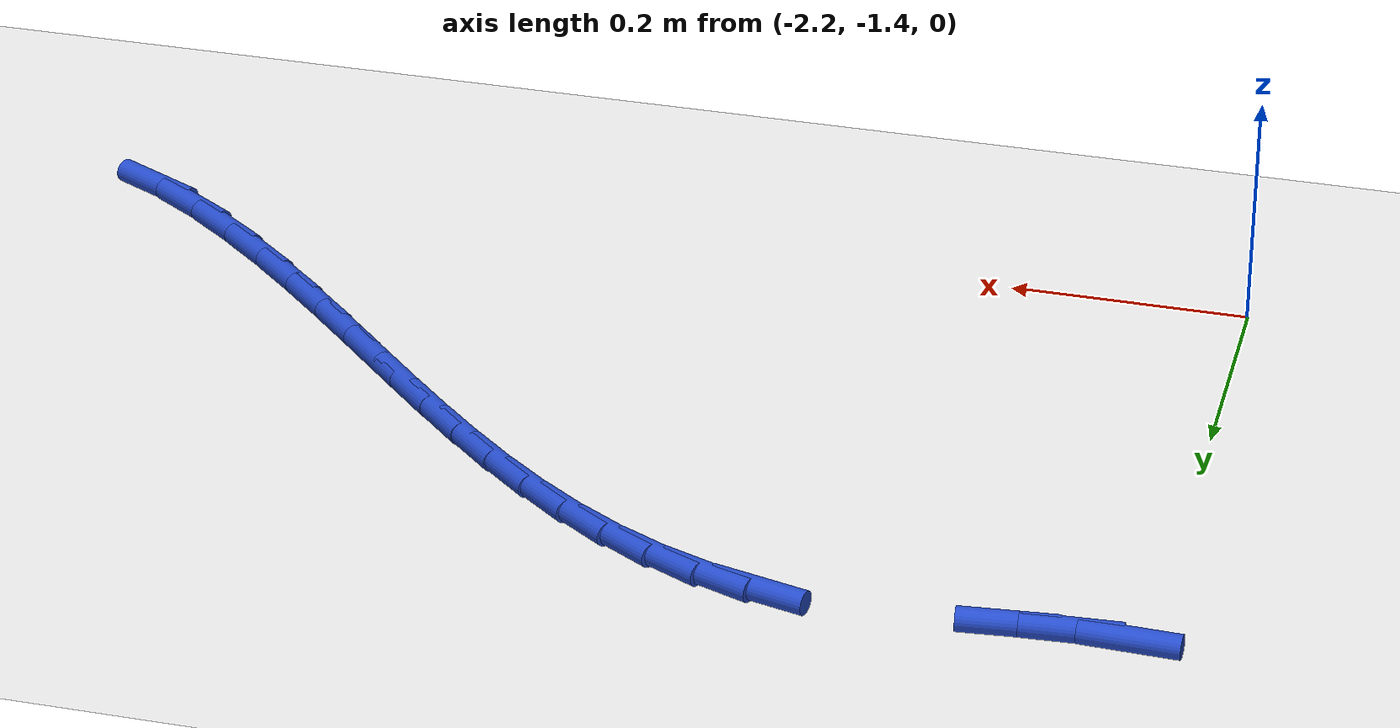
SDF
<sdf version="1.6">
 <world name="default">
  <model name="ground_plane">
   <static>1</static>
   <link name="link">
    <collision name="collision">
     <geometry><plane><normal>0 0 1</normal><size>100 100</size></plane></geometry>
     <surface><friction><ode><mu>100</mu><mu2>50</mu2></ode></friction></surface>
    </collision>
    <visual name="visual">
     <cast_shadows>0</cast_shadows>
     <geometry><plane><normal>0 0 1</normal><size>100 100</size></plane></geometry>
     <material>
      <script><uri>file://media/materials/scripts/gazebo.material</uri><name>Gazebo/WhiteGlow</name></script>
     </material>
    </visual>
   </link>
  </model>
  <model name="line">
   <link name="link_104">
    <pose>-2.1863535138939607 -0.891183382363469 0.01 0 1.57 -0.03459274210412524</pose>
    <collision name="collision">
     <geometry><cylinder><radius>0.01</radius><length>0.08</length></cylinder></geometry>
    </collision>
    <visual name="visual">
     <material>
      <script><name>Gazebo/Blue</name><uri>file://media/materials/scripts/gazebo.material</uri></script>
     </material>
     <geometry><cylinder><radius>0.01</radius><length>0.08</length></cylinder></geometry>
    </visual>
   </link>
   <link name="link_105">
    <pose>-2.141740156563224 -0.8927272966228299 0.01 0 1.57 0.06148715902980273</pose>
    <collision name="collision">
     <geometry><cylinder><radius>0.01</radius><length>0.08</length></cylinder></geometry>
    </collision>
    <visual name="visual">
     <material>
      <script><name>Gazebo/Blue</name><uri>file://media/materials/scripts/gazebo.material</uri></script>
     </material>
     <geometry><cylinder><radius>0.01</radius><length>0.08</length></cylinder></geometry>
    </visual>
   </link>
   <link name="link_106">
    <pose>-2.0939521663433305 -0.8897852402848782 0.01 0 1.57 0.09289889340919137</pose>
    <collision name="collision">
     <geometry><cylinder><radius>0.01</radius><length>0.08</length></cylinder></geometry>
    </collision>
    <visual name="visual">
     <material>
      <script><name>Gazebo/Blue</name><uri>file://media/materials/scripts/gazebo.material</uri></script>
     </material>
     <geometry><cylinder><radius>0.01</radius><length>0.08</length></cylinder></geometry>
    </visual>
   </link>
   <link name="link_110">
    <pose>-1.9015010749153678 -0.8880810859353943 0.01 0 1.57 -0.24246549224577857</pose>
    <collision name="collision">
     <geometry><cylinder><radius>0.01</radius><length>0.08</length></cylinder></geometry>
    </collision>
    <visual name="visual">
     <material>
      <script><name>Gazebo/Blue</name><uri>file://media/materials/scripts/gazebo.material</uri></script>
     </material>
     <geometry><cylinder><radius>0.01</radius><length>0.08</length></cylinder></geometry>
    </visual>
   </link>
   <link name="link_111">
    <pose>-1.8578995412120223 -0.8988651154841312 0.01 0 1.57 -0.3511095911500279</pose>
    <collision name="collision">
     <geometry><cylinder><radius>0.01</radius><length>0.08</length></cylinder></geometry>
    </collision>
    <visual name="visual">
     <material>
      <script><name>Gazebo/Blue</name><uri>file://media/materials/scripts/gazebo.material</uri></script>
     </material>
     <geometry><cylinder><radius>0.01</radius><length>0.08</length></cylinder></geometry>
    </visual>
   </link>
   <link name="link_112">
    <pose>-1.8161365110290368 -0.9141623473159629 0.01 0 1.57 -0.4492049320993139</pose>
    <collision name="collision">
     <geometry><cylinder><radius>0.01</radius><length>0.08</length></cylinder></geometry>
    </collision>
    <visual name="visual">
     <material>
      <script><name>Gazebo/Blue</name><uri>file://media/materials/scripts/gazebo.material</uri></script>
     </material>
     <geometry><cylinder><radius>0.01</radius><length>0.08</length></cylinder></geometry>
    </visual>
   </link>
   <link name="link_113">
    <pose>-1.775973570536788 -0.9335238908727727 0.01 0 1.57 -0.5346426331031279</pose>
    <collision name="collision">
     <geometry><cylinder><radius>0.01</radius><length>0.08</length></cylinder></geometry>
    </collision>
    <visual name="visual">
     <material>
      <script><name>Gazebo/Blue</name><uri>file://media/materials/scripts/gazebo.material</uri></script>
     </material>
     <geometry><cylinder><radius>0.01</radius><length>0.08</length></cylinder></geometry>
    </visual>
   </link>
   <link name="link_114">
    <pose>-1.7371723059056556 -0.9565008555964445 0.01 0 1.57 -0.6065974975046856</pose>
    <collision name="collision">
     <geometry><cylinder><radius>0.01</radius><length>0.08</length></cylinder></geometry>
    </collision>
    <visual name="visual">
     <material>
      <script><name>Gazebo/Blue</name><uri>file://media/materials/scripts/gazebo.material</uri></script>
     </material>
     <geometry><cylinder><radius>0.01</radius><length>0.08</length></cylinder></geometry>
    </visual>
   </link>
   <link name="link_115">
    <pose>-1.699494303306017 -0.9826443509288632 0.01 0 1.57 -0.6651659445312288</pose>
    <collision name="collision">
     <geometry><cylinder><radius>0.01</radius><length>0.08</length></cylinder></geometry>
    </collision>
    <visual name="visual">
     <material>
      <script><name>Gazebo/Blue</name><uri>file://media/materials/scripts/gazebo.material</uri></script>
     </material>
     <geometry><cylinder><radius>0.01</radius><length>0.08</length></cylinder></geometry>
    </visual>
   </link>
   <link name="link_116">
    <pose>-1.6627011489082526 -1.0115054863119108 0.01 0 1.57 -0.7109656474010907</pose>
    <collision name="collision">
     <geometry><cylinder><radius>0.01</radius><length>0.08</length></cylinder></geometry>
    </collision>
    <visual name="visual">
     <material>
      <script><name>Gazebo/Blue</name><uri>file://media/materials/scripts/gazebo.material</uri></script>
     </material>
     <geometry><cylinder><radius>0.01</radius><length>0.08</length></cylinder></geometry>
    </visual>
   </link>
   <link name="link_117">
    <pose>-1.62655442888274 -1.042635371187472 0.01 0 1.57 -0.7448174714007388</pose>
    <collision name="collision">
     <geometry><cylinder><radius>0.01</radius><length>0.08</length></cylinder></geometry>
    </collision>
    <visual name="visual">
     <material>
      <script><name>Gazebo/Blue</name><uri>file://media/materials/scripts/gazebo.material</uri></script>
     </material>
     <geometry><cylinder><radius>0.01</radius><length>0.08</length></cylinder></geometry>
    </visual>
   </link>
   <link name="link_118">
    <pose>-1.5908157293998575 -1.0755851149974314 0.01 0 1.57 -0.7675379355397813</pose>
    <collision name="collision">
     <geometry><cylinder><radius>0.01</radius><length>0.08</length></cylinder></geometry>
    </collision>
    <visual name="visual">
     <material>
      <script><name>Gazebo/Blue</name><uri>file://media/materials/scripts/gazebo.material</uri></script>
     </material>
     <geometry><cylinder><radius>0.01</radius><length>0.08</length></cylinder></geometry>
    </visual>
   </link>
   <link name="link_119">
    <pose>-1.555246636629984 -1.1099058271836713 0.01 0 1.57 -0.7798239260363339</pose>
    <collision name="collision">
     <geometry><cylinder><radius>0.01</radius><length>0.08</length></cylinder></geometry>
    </collision>
    <visual name="visual">
     <material>
      <script><name>Gazebo/Blue</name><uri>file://media/materials/scripts/gazebo.material</uri></script>
     </material>
     <geometry><cylinder><radius>0.01</radius><length>0.08</length></cylinder></geometry>
    </visual>
   </link>
   <link name="link_120">
    <pose>-1.5196087367434978 -1.1451486171880767 0.01 0 1.57 -0.7822005737234954</pose>
    <collision name="collision">
     <geometry><cylinder><radius>0.01</radius><length>0.08</length></cylinder></geometry>
    </collision>
    <visual name="visual">
     <material>
      <script><name>Gazebo/Blue</name><uri>file://media/materials/scripts/gazebo.material</uri></script>
     </material>
     <geometry><cylinder><radius>0.01</radius><length>0.08</length></cylinder></geometry>
    </visual>
   </link>
   <link name="link_121">
    <pose>-1.483663615910777 -1.1808645944525318 0.01 0 1.57 -0.775008520014166</pose>
    <collision name="collision">
     <geometry><cylinder><radius>0.01</radius><length>0.08</length></cylinder></geometry>
    </collision>
    <visual name="visual">
     <material>
      <script><name>Gazebo/Blue</name><uri>file://media/materials/scripts/gazebo.material</uri></script>
     </material>
     <geometry><cylinder><radius>0.01</radius><length>0.08</length></cylinder></geometry>
    </visual>
   </link>
   <link name="link_122">
    <pose>-1.4471728603022014 -1.2166048684189192 0.01 0 1.57 -0.7584159954112224</pose>
    <collision name="collision">
     <geometry><cylinder><radius>0.01</radius><length>0.08</length></cylinder></geometry>
    </collision>
    <visual name="visual">
     <material>
      <script><name>Gazebo/Blue</name><uri>file://media/materials/scripts/gazebo.material</uri></script>
     </material>
     <geometry><cylinder><radius>0.01</radius><length>0.08</length></cylinder></geometry>
    </visual>
   </link>
   <link name="link_123">
    <pose>-1.4098980560881489 -1.2519205485291232 0.01 0 1.57 -0.7324493582493541</pose>
    <collision name="collision">
     <geometry><cylinder><radius>0.01</radius><length>0.08</length></cylinder></geometry>
    </collision>
    <visual name="visual">
     <material>
      <script><name>Gazebo/Blue</name><uri>file://media/materials/scripts/gazebo.material</uri></script>
     </material>
     <geometry><cylinder><radius>0.01</radius><length>0.08</length></cylinder></geometry>
    </visual>
   </link>
   <link name="link_124">
    <pose>-1.3716007894389985 -1.2863627442250278 0.01 0 1.57 -0.697036656611829</pose>
    <collision name="collision">
     <geometry><cylinder><radius>0.01</radius><length>0.08</length></cylinder></geometry>
    </collision>
    <visual name="visual">
     <material>
      <script><name>Gazebo/Blue</name><uri>file://media/materials/scripts/gazebo.material</uri></script>
     </material>
     <geometry><cylinder><radius>0.01</radius><length>0.08</length></cylinder></geometry>
    </visual>
   </link>
   <link name="link_125">
    <pose>-1.332042836742503 -1.3194820582866424 0.01 0 1.57 -0.6481206373294665</pose>
    <collision name="collision">
     <geometry><cylinder><radius>0.01</radius><length>0.08</length></cylinder></geometry>
    </collision>
    <visual name="visual">
     <material>
      <script><name>Gazebo/Blue</name><uri>file://media/materials/scripts/gazebo.material</uri></script>
     </material>
     <geometry><cylinder><radius>0.01</radius><length>0.08</length></cylinder></geometry>
    </visual>
   </link>
   <link name="link_126">
    <pose>-1.2911207906053428 -1.3504699978110193 0.01 0 1.57 -0.572133708412399</pose>
    <collision name="collision">
     <geometry><cylinder><radius>0.01</radius><length>0.08</length></cylinder></geometry>
    </collision>
    <visual name="visual">
     <material>
      <script><name>Gazebo/Blue</name><uri>file://media/materials/scripts/gazebo.material</uri></script>
     </material>
     <geometry><cylinder><radius>0.01</radius><length>0.08</length></cylinder></geometry>
    </visual>
   </link>
   <link name="link_127">
    <pose>-1.249102564823792 -1.3775290209719235 0.01 0 1.57 -0.45937880357655553</pose>
    <collision name="collision">
     <geometry><cylinder><radius>0.01</radius><length>0.08</length></cylinder></geometry>
    </collision>
    <visual name="visual">
     <material>
      <script><name>Gazebo/Blue</name><uri>file://media/materials/scripts/gazebo.material</uri></script>
     </material>
     <geometry><cylinder><radius>0.01</radius><length>0.08</length></cylinder></geometry>
    </visual>
   </link>
  </model>
 </world>
</sdf>
